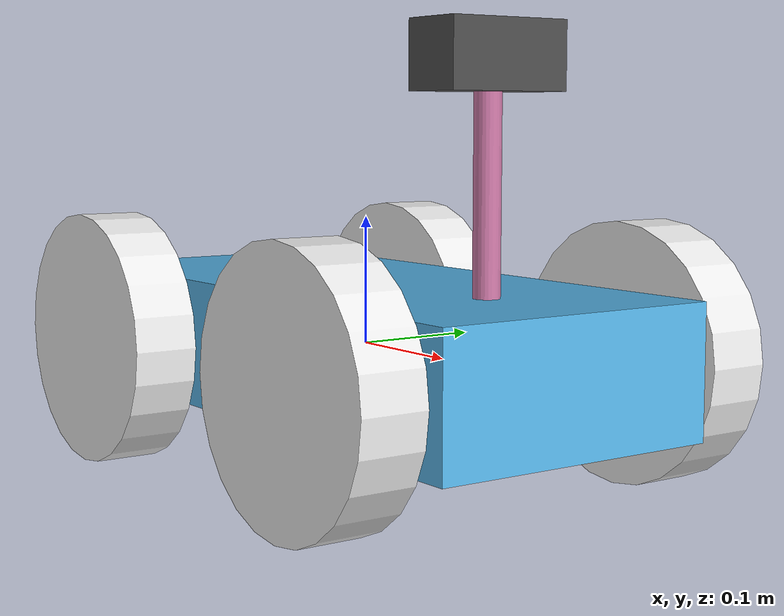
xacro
<?xml version='1.0'?>

<robot name="my_robot" xmlns:xacro="http://www.ros.org/wiki/xacro">
<xacro:include filename="$(find udemy_sim_pkg)/urdf/my_robot.gazebo" />

  <link name="robot_footprint"></link>

   <joint name="robot_footprint_joint" type="fixed">
      <origin xyz="0 0 0" rpy="0 0 0" />
      <parent link="robot_footprint"/>
      <child link="chassis" />
   </joint>

   <link name='chassis'>
    <pose>0 0 0.1 0 0 0</pose>

    <inertial>
      <mass value="15.0"/>
      <origin xyz="0.0 0 0" rpy=" 0 0 0"/>
      <inertia
          ixx="0.1" ixy="0" ixz="0"
          iyy="0.1" iyz="0"
          izz="0.1"
      />
    </inertial>

    <collision name='collision'>
      <origin xyz="0 0 0" rpy=" 0 0 0"/>
      <geometry>
        <box size=".5 .23 .1"/>
      </geometry>
    </collision>

    <visual name='chassis_visual'>
      <origin xyz="0 0 0" rpy=" 0 0 0"/>
      <geometry>
        <box size=".5 .23 .1"/>
      </geometry>
    </visual>

  </link>

  <link name='left_wheel'>

    <collision name='left_wheel_collision'>
      <origin xyz="0 0 0" rpy=" 0 1.5707 1.5707"/>
      <geometry>
        <cylinder radius="0.1" length="0.05"/>
      </geometry>
    </collision>

    <inertial name='left_wheel_inertial'>
      <origin xyz="0 0 0" rpy=" 0 1.5707 1.5707"/>
      <mass value="5.0"/>
      <inertia
          ixx="0.1" ixy="0" ixz="0"
          iyy="0.1" iyz="0"
          izz="0.1"
      />
    </inertial>

    <visual name='left_wheel_visual'>
      <origin xyz="0 0 0" rpy=" 0 1.5707 1.5707"/>
      <geometry>
        <cylinder radius="0.1" length="0.05"/>
      </geometry>
    </visual>

  </link>

  <link name='right_wheel'>

    <collision name='right_wheel_collision'>
      <origin xyz="0 0 0" rpy=" 0 1.5707 1.5707"/>
      <geometry>
        <cylinder radius="0.1" length="0.05"/>
      </geometry>
    </collision>

    <inertial name='right_wheel_inertial'>
      <origin xyz="0 0 0" rpy=" 0 1.5707 1.5707"/>
      <mass value="5.0"/>
      <inertia
          ixx="0.1" ixy="0" ixz="0"
          iyy="0.1" iyz="0"
          izz="0.1"
      />
    </inertial>

    <visual name='right_wheel_visual'>
      <origin xyz="0 0 0" rpy=" 0 1.5707 1.5707"/>
      <geometry>
        <cylinder radius="0.1" length="0.05"/>
      </geometry>
    </visual>

  </link>

  <link name='left_wheel_2'>

    <collision name='left_wheel_2_collision'>
      <origin xyz="0 0 0" rpy=" 0 1.5707 1.5707"/>
      <geometry>
        <cylinder radius="0.1" length="0.05"/>
      </geometry>
    </collision>

    <inertial name='left_wheel_2_inertial'>
      <origin xyz="0 0 0" rpy=" 0 1.5707 1.5707"/>
      <mass value="5.0"/>
      <inertia
          ixx="0.1" ixy="0" ixz="0"
          iyy="0.1" iyz="0"
          izz="0.1"
      />
    </inertial>

    <visual name='left_wheel_2_visual'>
      <origin xyz="0 0 0" rpy=" 0 1.5707 1.5707"/>
      <geometry>
        <cylinder radius="0.1" length="0.05"/>
      </geometry>
    </visual>

  </link>

  <link name='right_wheel_2'>
    <collision name='right_wheel_2_collision'>
      <origin xyz="0 0 0" rpy=" 0 1.5707 1.5707"/>
      <geometry>
        <cylinder radius="0.1" length="0.05"/>
      </geometry>
    </collision>

    <inertial name='right_wheel_2_inertial'>
      <origin xyz="0 0 0" rpy=" 0 1.5707 1.5707"/>
      <mass value="5.0"/>
      <inertia
          ixx="0.1" ixy="0" ixz="0"
          iyy="0.1" iyz="0"
          izz="0.1"
      />
    </inertial>

    <visual name='right_wheel_2_visual'>
      <origin xyz="0 0 0" rpy=" 0 1.5707 1.5707"/>
      <geometry>
        <cylinder radius="0.1" length="0.05"/>
      </geometry>
    </visual>

  </link>

  <link name='camera_shaft'>

    <collision name='camera_shaft_collision'>
      <origin xyz="0 0 0" rpy="0 0 0"/>
      <geometry>
        <cylinder radius="0.01" length="0.25"/>
      </geometry>
    </collision>

    <inertial name='camera_shaft_inertial'>
      <origin xyz="0 0 0" rpy="0 0 0"/>
      <mass value="5.0"/>
      <inertia
          ixx="0.1" ixy="0" ixz="0"
          iyy="0.1" iyz="0"
          izz="0.1"
      />
    </inertial>

    <visual name='camera_shaft_visual'>
      <origin xyz="0 0 0" rpy="0 0 0"/>
      <geometry>
        <cylinder radius="0.01" length="0.25"/>
      </geometry>
    </visual>

  </link>

  <link name='camera'>
    <inertial>
      <origin xyz="0 0 0" rpy="0 0 0"/>
      <mass value="0.1"/>
      <box_inertia m="0.1" x="0.05" y="0.05" z="0.05"/>
      <inertia
          ixx="1e-6" ixy="0" ixz="0"
          iyy="1e-6" iyz="0"
          izz="1e-6"
      />
    </inertial>

    <visual name='camera_visual'>
      <origin xyz="0 0 0" rpy="0 0 0"/>
      <geometry>
        <box size=".05 .1 .05"/>
      </geometry>
    </visual>

    <collision name='camera_collision'>
      <origin xyz="0 0 0" rpy="0 0 0"/>
      <geometry>
        <box size=".05 .1 .05"/>
      </geometry>
    </collision>
  </link>

  <!-- Joints -->
  <joint type="continuous" name="left_wheel_hinge">
    <origin xyz="0.15 0.15 0" rpy="0 0 0"/>
    <child link="left_wheel"/>
    <parent link="chassis"/>
    <axis xyz="0 1 0" rpy="0 0 0"/>
    <limit effort="10000" velocity="1000"/>
    <dynamics damping="1.0" friction="0.75"/>
  </joint>

  <joint type="continuous" name="right_wheel_hinge">
    <origin xyz="0.15 -0.15 0" rpy="0 0 0"/>
    <child link="right_wheel"/>
    <parent link="chassis"/>
    <axis xyz="0 1 0" rpy="0 0 0"/>
    <limit effort="10000" velocity="1000"/>
    <dynamics damping="1.0" friction="0.75"/>
  </joint>

  <joint type="continuous" name="left_wheel_2_hinge">
    <origin xyz="-0.15 0.15 0" rpy="0 0 0"/>
    <child link="left_wheel_2"/>
    <parent link="chassis"/>
    <axis xyz="0 1 0" rpy="0 0 0"/>
    <limit effort="10000" velocity="1000"/>
    <dynamics damping="1.0" friction="0.75"/>
  </joint>

  <joint type="continuous" name="right_wheel_2_hinge">
    <origin xyz="-0.15 -0.15 0" rpy="0 0 0"/>
    <child link="right_wheel_2"/>
    <parent link="chassis"/>
    <axis xyz="0 1 0" rpy="0 0 0"/>
    <limit effort="10000" velocity="1000"/>
    <dynamics damping="1.0" friction="0.75"/>
  </joint>

  <joint type="continuous" name="camera_shaft_hinge">
    <origin xyz="0.15 0 .1" rpy="0 0 0"/>
    <child link="camera_shaft"/>
    <parent link="chassis"/>
    <axis xyz="0 0 1" rpy="0 0 0"/>
    <limit effort="10000" velocity="1000"/>
    <dynamics damping="1.0" friction="0.75"/>
  </joint>

  <joint type="fixed" name="camera_joint">
    <origin xyz="0.0 0 .12" rpy="0 0 0"/>
    <child link="camera"/>
    <parent link="camera_shaft"/>
    <axis xyz="0 1 0"/>
  </joint>

  <!-- transmission -->
  <transmission name="chassis_to_wheel_1_trans">
    <type>transmission_interface/SimpleTransmission</type>
    <actuator name="motor1">
      <mechanicalReduction>1</mechanicalReduction>
    </actuator>
    <joint name="right_wheel_hinge">
      <hardwareInterface>hardware_interface/VelocityJointInterface</hardwareInterface>
    </joint>
  </transmission>

  <transmission name="chassis_to_wheel_2_trans">
    <type>transmission_interface/SimpleTransmission</type>
    <actuator name="motor2">
      <mechanicalReduction>1</mechanicalReduction>
    </actuator>
    <joint name="left_wheel_hinge">
      <hardwareInterface>hardware_interface/VelocityJointInterface</hardwareInterface>
    </joint>
  </transmission>

  <transmission name="chassis_to_wheel_3_trans">
    <type>transmission_interface/SimpleTransmission</type>
    <actuator name="motor3">
      <mechanicalReduction>1</mechanicalReduction>
    </actuator>
    <joint name="right_wheel_2_hinge">
      <hardwareInterface>hardware_interface/VelocityJointInterface</hardwareInterface>
    </joint>
  </transmission>

  <transmission name="chassis_to_wheel_4_trans">
    <type>transmission_interface/SimpleTransmission</type>
    <actuator name="motor4">
      <mechanicalReduction>1</mechanicalReduction>
    </actuator>
    <joint name="left_wheel_2_hinge">
      <hardwareInterface>hardware_interface/VelocityJointInterface</hardwareInterface>
    </joint>
  </transmission>

  <transmission name="chassis_to_camera_shaft_trans">
    <type>transmission_interface/SimpleTransmission</type>
    <actuator name="motor5">
      <mechanicalReduction>1</mechanicalReduction>
    </actuator>
    <joint name="camera_shaft_hinge">
      <hardwareInterface>hardware_interface/VelocityJointInterface</hardwareInterface>
    </joint>
  </transmission>

</robot>
